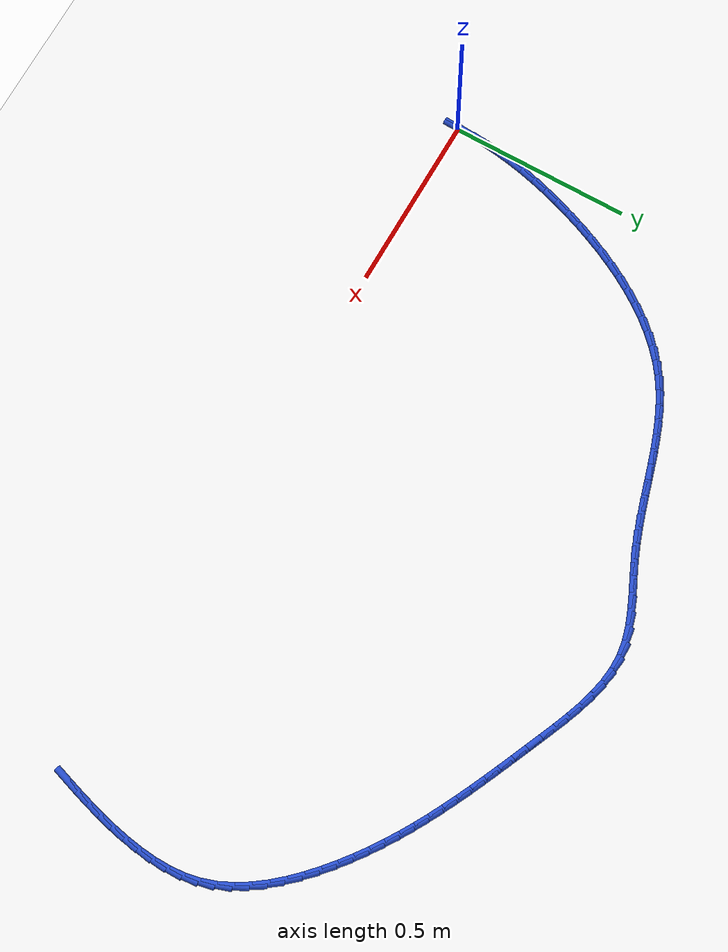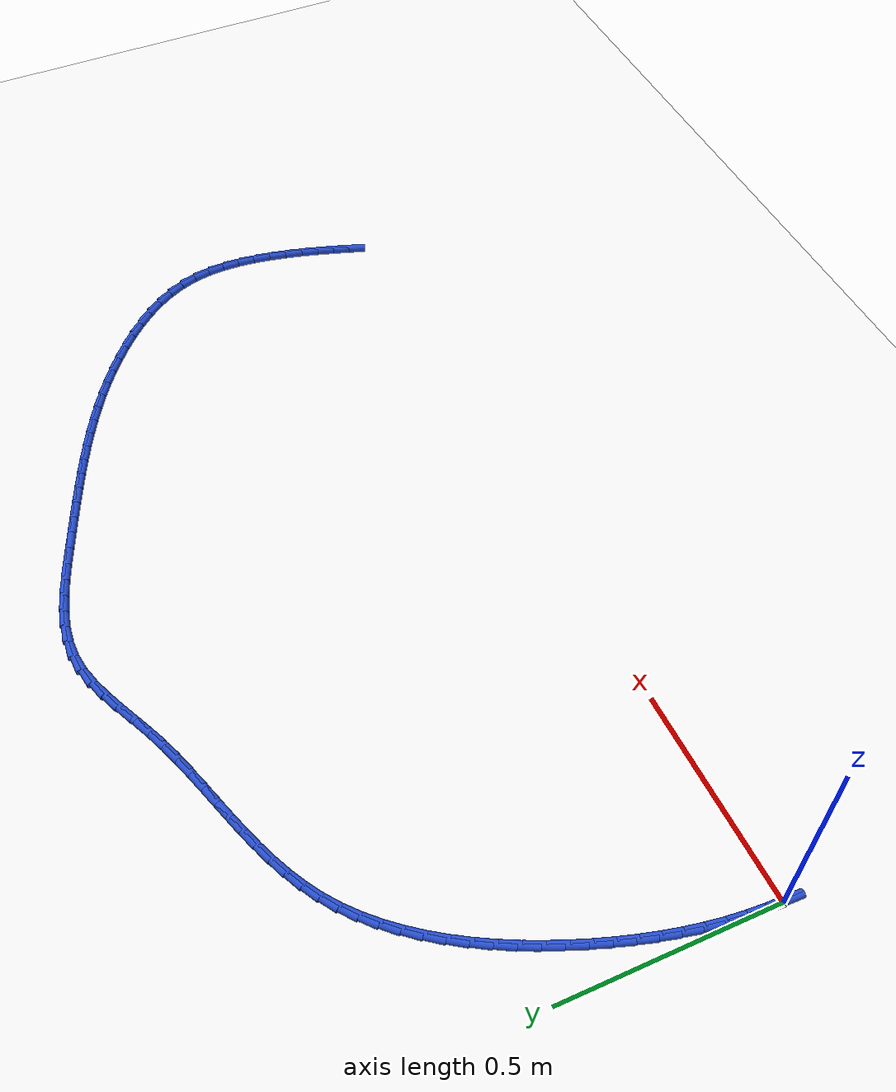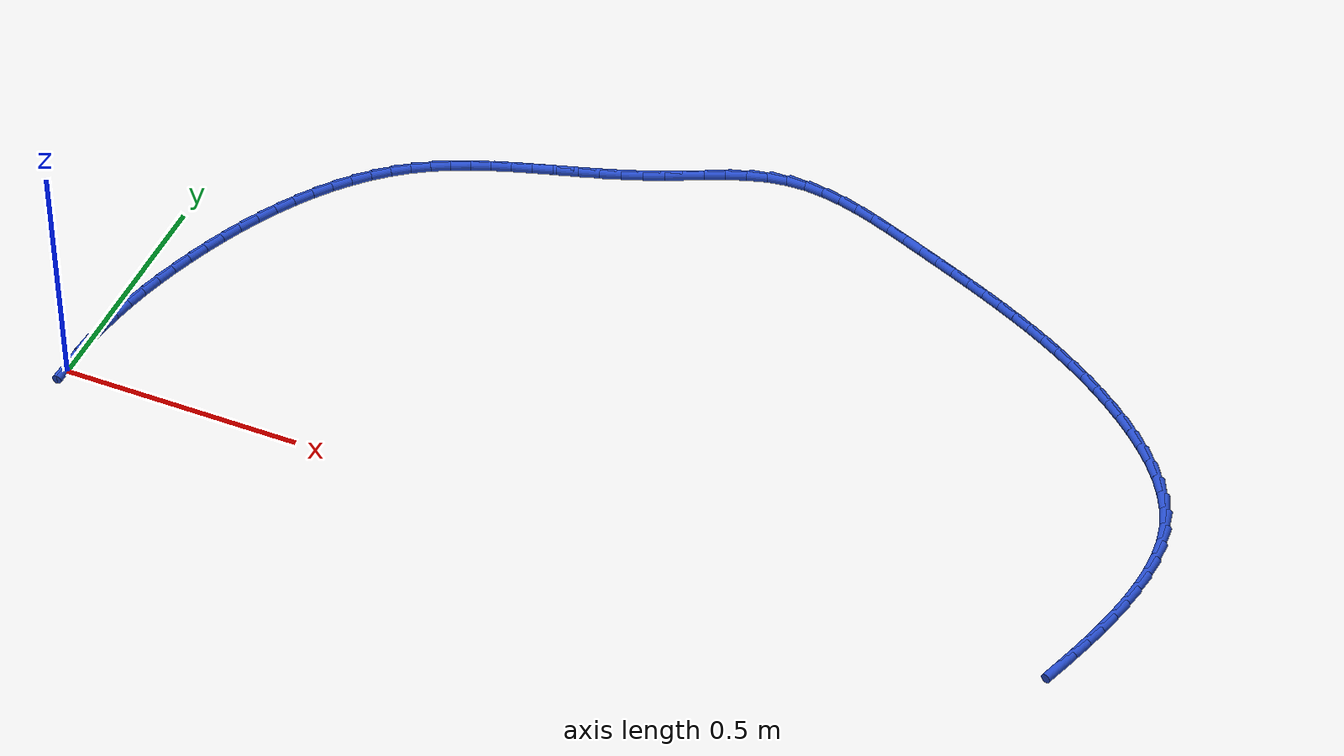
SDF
<sdf version="1.6">
 <world name="default">
  <model name="ground_plane">
   <static>1</static>
   <link name="link">
    <collision name="collision">
     <geometry><plane><normal>0 0 1</normal><size>100 100</size></plane></geometry>
     <surface><friction><ode><mu>100</mu><mu2>50</mu2></ode></friction></surface>
    </collision>
    <visual name="visual">
     <cast_shadows>0</cast_shadows>
     <geometry><plane><normal>0 0 1</normal><size>100 100</size></plane></geometry>
     <material>
      <script><uri>file://media/materials/scripts/gazebo.material</uri><name>Gazebo/WhiteGlow</name></script>
     </material>
    </visual>
   </link>
  </model>
  <model name="line">
   <link name="link_0">
    <pose>8.673617379884035e-18 1.3877787807814457e-17 0.01 0 1.57 1.537599450367711</pose>
    <collision name="collision">
     <geometry><cylinder><radius>0.01</radius><length>0.08</length></cylinder></geometry>
    </collision>
    <visual name="visual">
     <material>
      <script><name>Gazebo/Blue</name><uri>file://media/materials/scripts/gazebo.material</uri></script>
     </material>
     <geometry><cylinder><radius>0.01</radius><length>0.08</length></cylinder></geometry>
    </visual>
   </link>
   <link name="link_1">
    <pose>0.0014228718258987249 0.04284587156562112 0.01 0 1.57 1.4931271198834803</pose>
    <collision name="collision">
     <geometry><cylinder><radius>0.01</radius><length>0.08</length></cylinder></geometry>
    </collision>
    <visual name="visual">
     <material>
      <script><name>Gazebo/Blue</name><uri>file://media/materials/scripts/gazebo.material</uri></script>
     </material>
     <geometry><cylinder><radius>0.01</radius><length>0.08</length></cylinder></geometry>
    </visual>
   </link>
   <link name="link_2">
    <pose>0.004742405994035064 0.08549928052376658 0.01 0 1.57 1.4502465807518221</pose>
    <collision name="collision">
     <geometry><cylinder><radius>0.01</radius><length>0.08</length></cylinder></geometry>
    </collision>
    <visual name="visual">
     <material>
      <script><name>Gazebo/Blue</name><uri>file://media/materials/scripts/gazebo.material</uri></script>
     </material>
     <geometry><cylinder><radius>0.01</radius><length>0.08</length></cylinder></geometry>
    </visual>
   </link>
   <link name="link_3">
    <pose>0.009887973836087992 0.12797650079125714 0.01 0 1.57 1.4091424649536322</pose>
    <collision name="collision">
     <geometry><cylinder><radius>0.01</radius><length>0.08</length></cylinder></geometry>
    </collision>
    <visual name="visual">
     <material>
      <script><name>Gazebo/Blue</name><uri>file://media/materials/scripts/gazebo.material</uri></script>
     </material>
     <geometry><cylinder><radius>0.01</radius><length>0.08</length></cylinder></geometry>
    </visual>
   </link>
   <link name="link_4">
    <pose>0.01678894668373644 0.17029380628491342 0.01 0 1.57 1.3699600547260784</pose>
    <collision name="collision">
     <geometry><cylinder><radius>0.01</radius><length>0.08</length></cylinder></geometry>
    </collision>
    <visual name="visual">
     <material>
      <script><name>Gazebo/Blue</name><uri>file://media/materials/scripts/gazebo.material</uri></script>
     </material>
     <geometry><cylinder><radius>0.01</radius><length>0.08</length></cylinder></geometry>
    </visual>
   </link>
   <link name="link_5">
    <pose>0.025374695868659362 0.2124674709215563 0.01 0 1.57 1.3328064204066152</pose>
    <collision name="collision">
     <geometry><cylinder><radius>0.01</radius><length>0.08</length></cylinder></geometry>
    </collision>
    <visual name="visual">
     <material>
      <script><name>Gazebo/Blue</name><uri>file://media/materials/scripts/gazebo.material</uri></script>
     </material>
     <geometry><cylinder><radius>0.01</radius><length>0.08</length></cylinder></geometry>
    </visual>
   </link>
   <link name="link_6">
    <pose>0.03557459272253571 0.2545137686180063 0.01 0 1.57 1.2977531604129349</pose>
    <collision name="collision">
     <geometry><cylinder><radius>0.01</radius><length>0.08</length></cylinder></geometry>
    </collision>
    <visual name="visual">
     <material>
      <script><name>Gazebo/Blue</name><uri>file://media/materials/scripts/gazebo.material</uri></script>
     </material>
     <geometry><cylinder><radius>0.01</radius><length>0.08</length></cylinder></geometry>
    </visual>
   </link>
   <link name="link_7">
    <pose>0.04731800857704441 0.2964489732910842 0.01 0 1.57 1.264840242945637</pose>
    <collision name="collision">
     <geometry><cylinder><radius>0.01</radius><length>0.08</length></cylinder></geometry>
    </collision>
    <visual name="visual">
     <material>
      <script><name>Gazebo/Blue</name><uri>file://media/materials/scripts/gazebo.material</uri></script>
     </material>
     <geometry><cylinder><radius>0.01</radius><length>0.08</length></cylinder></geometry>
    </visual>
   </link>
   <link name="link_8">
    <pose>0.06053431476386442 0.3382893588576108 0.01 0 1.57 1.234080470994198</pose>
    <collision name="collision">
     <geometry><cylinder><radius>0.01</radius><length>0.08</length></cylinder></geometry>
    </collision>
    <visual name="visual">
     <material>
      <script><name>Gazebo/Blue</name><uri>file://media/materials/scripts/gazebo.material</uri></script>
     </material>
     <geometry><cylinder><radius>0.01</radius><length>0.08</length></cylinder></geometry>
    </visual>
   </link>
   <link name="link_9">
    <pose>0.0751528826146747 0.3800511992344068 0.01 0 1.57 1.204846771785379</pose>
    <collision name="collision">
     <geometry><cylinder><radius>0.01</radius><length>0.08</length></cylinder></geometry>
    </collision>
    <visual name="visual">
     <material>
      <script><name>Gazebo/Blue</name><uri>file://media/materials/scripts/gazebo.material</uri></script>
     </material>
     <geometry><cylinder><radius>0.01</radius><length>0.08</length></cylinder></geometry>
    </visual>
   </link>
   <link name="link_10">
    <pose>0.09111874508139664 0.4217146082256782 0.01 0 1.57 1.1740229874519834</pose>
    <collision name="collision">
     <geometry><cylinder><radius>0.01</radius><length>0.08</length></cylinder></geometry>
    </collision>
    <visual name="visual">
     <material>
      <script><name>Gazebo/Blue</name><uri>file://media/materials/scripts/gazebo.material</uri></script>
     </material>
     <geometry><cylinder><radius>0.01</radius><length>0.08</length></cylinder></geometry>
    </visual>
   </link>
   <link name="link_11">
    <pose>0.10845266657797514 0.46308484810987344 0.01 0 1.57 1.1403853496866554</pose>
    <collision name="collision">
     <geometry><cylinder><radius>0.01</radius><length>0.08</length></cylinder></geometry>
    </collision>
    <visual name="visual">
     <material>
      <script><name>Gazebo/Blue</name><uri>file://media/materials/scripts/gazebo.material</uri></script>
     </material>
     <geometry><cylinder><radius>0.01</radius><length>0.08</length></cylinder></geometry>
    </visual>
   </link>
   <link name="link_12">
    <pose>0.12719827137774514 0.5039144014991548 0.01 0 1.57 1.1035539693658794</pose>
    <collision name="collision">
     <geometry><cylinder><radius>0.01</radius><length>0.08</length></cylinder></geometry>
    </collision>
    <visual name="visual">
     <material>
      <script><name>Gazebo/Blue</name><uri>file://media/materials/scripts/gazebo.material</uri></script>
     </material>
     <geometry><cylinder><radius>0.01</radius><length>0.08</length></cylinder></geometry>
    </visual>
   </link>
   <link name="link_13">
    <pose>0.14739918853467981 0.5439557399679742 0.01 0 1.57 1.0631086554477034</pose>
    <collision name="collision">
     <geometry><cylinder><radius>0.01</radius><length>0.08</length></cylinder></geometry>
    </collision>
    <visual name="visual">
     <material>
      <script><name>Gazebo/Blue</name><uri>file://media/materials/scripts/gazebo.material</uri></script>
     </material>
     <geometry><cylinder><radius>0.01</radius><length>0.08</length></cylinder></geometry>
    </visual>
   </link>
   <link name="link_14">
    <pose>0.16909904710275245 0.5829613350907845 0.01 0 1.57 1.018589851970601</pose>
    <collision name="collision">
     <geometry><cylinder><radius>0.01</radius><length>0.08</length></cylinder></geometry>
    </collision>
    <visual name="visual">
     <material>
      <script><name>Gazebo/Blue</name><uri>file://media/materials/scripts/gazebo.material</uri></script>
     </material>
     <geometry><cylinder><radius>0.01</radius><length>0.08</length></cylinder></geometry>
    </visual>
   </link>
   <link name="link_15">
    <pose>0.19234147613593622 0.6206836584420379 0.01 0 1.57 0.9695048950105307</pose>
    <collision name="collision">
     <geometry><cylinder><radius>0.01</radius><length>0.08</length></cylinder></geometry>
    </collision>
    <visual name="visual">
     <material>
      <script><name>Gazebo/Blue</name><uri>file://media/materials/scripts/gazebo.material</uri></script>
     </material>
     <geometry><cylinder><radius>0.01</radius><length>0.08</length></cylinder></geometry>
    </visual>
   </link>
   <link name="link_16">
    <pose>0.21717010468820444 0.6568751815961871 0.01 0 1.57 0.9153422922503045</pose>
    <collision name="collision">
     <geometry><cylinder><radius>0.01</radius><length>0.08</length></cylinder></geometry>
    </collision>
    <visual name="visual">
     <material>
      <script><name>Gazebo/Blue</name><uri>file://media/materials/scripts/gazebo.material</uri></script>
     </material>
     <geometry><cylinder><radius>0.01</radius><length>0.08</length></cylinder></geometry>
    </visual>
   </link>
   <link name="link_17">
    <pose>0.2436285618135302 0.691288376127684 0.01 0 1.57 0.8555978114216262</pose>
    <collision name="collision">
     <geometry><cylinder><radius>0.01</radius><length>0.08</length></cylinder></geometry>
    </collision>
    <visual name="visual">
     <material>
      <script><name>Gazebo/Blue</name><uri>file://media/materials/scripts/gazebo.material</uri></script>
     </material>
     <geometry><cylinder><radius>0.01</radius><length>0.08</length></cylinder></geometry>
    </visual>
   </link>
   <link name="link_18">
    <pose>0.2717604765658868 0.7236757136109813 0.01 0 1.57 0.7898167057926905</pose>
    <collision name="collision">
     <geometry><cylinder><radius>0.01</radius><length>0.08</length></cylinder></geometry>
    </collision>
    <visual name="visual">
     <material>
      <script><name>Gazebo/Blue</name><uri>file://media/materials/scripts/gazebo.material</uri></script>
     </material>
     <geometry><cylinder><radius>0.01</radius><length>0.08</length></cylinder></geometry>
    </visual>
   </link>
   <link name="link_19">
    <pose>0.3016094779992475 0.7537896656205313 0.01 0 1.57 0.7176558269763292</pose>
    <collision name="collision">
     <geometry><cylinder><radius>0.01</radius><length>0.08</length></cylinder></geometry>
    </collision>
    <visual name="visual">
     <material>
      <script><name>Gazebo/Blue</name><uri>file://media/materials/scripts/gazebo.material</uri></script>
     </material>
     <geometry><cylinder><radius>0.01</radius><length>0.08</length></cylinder></geometry>
    </visual>
   </link>
   <link name="link_20">
    <pose>0.33321919516758536 0.7813827037307866 0.01 0 1.57 0.6389675547448508</pose>
    <collision name="collision">
     <geometry><cylinder><radius>0.01</radius><length>0.08</length></cylinder></geometry>
    </collision>
    <visual name="visual">
     <material>
      <script><name>Gazebo/Blue</name><uri>file://media/materials/scripts/gazebo.material</uri></script>
     </material>
     <geometry><cylinder><radius>0.01</radius><length>0.08</length></cylinder></geometry>
    </visual>
   </link>
   <link name="link_21">
    <pose>0.3666332401087448 0.8062073435570297 0.01 0 1.57 0.5573835775006121</pose>
    <collision name="collision">
     <geometry><cylinder><radius>0.01</radius><length>0.08</length></cylinder></geometry>
    </collision>
    <visual name="visual">
     <material>
      <script><name>Gazebo/Blue</name><uri>file://media/materials/scripts/gazebo.material</uri></script>
     </material>
     <geometry><cylinder><radius>0.01</radius><length>0.08</length></cylinder></geometry>
    </visual>
   </link>
   <link name="link_22">
    <pose>0.4018421612449245 0.8281534389833063 0.01 0 1.57 0.48485346961716697</pose>
    <collision name="collision">
     <geometry><cylinder><radius>0.01</radius><length>0.08</length></cylinder></geometry>
    </collision>
    <visual name="visual">
     <material>
      <script><name>Gazebo/Blue</name><uri>file://media/materials/scripts/gazebo.material</uri></script>
     </material>
     <geometry><cylinder><radius>0.01</radius><length>0.08</length></cylinder></geometry>
    </visual>
   </link>
   <link name="link_23">
    <pose>0.43866602477117095 0.8475520828414268 0.01 0 1.57 0.4243671857226578</pose>
    <collision name="collision">
     <geometry><cylinder><radius>0.01</radius><length>0.08</length></cylinder></geometry>
    </collision>
    <visual name="visual">
     <material>
      <script><name>Gazebo/Blue</name><uri>file://media/materials/scripts/gazebo.material</uri></script>
     </material>
     <geometry><cylinder><radius>0.01</radius><length>0.08</length></cylinder></geometry>
    </visual>
   </link>
   <link name="link_24">
    <pose>0.47689072773646457 0.8648228039151946 0.01 0 1.57 0.3760746621710777</pose>
    <collision name="collision">
     <geometry><cylinder><radius>0.01</radius><length>0.08</length></cylinder></geometry>
    </collision>
    <visual name="visual">
     <material>
      <script><name>Gazebo/Blue</name><uri>file://media/materials/scripts/gazebo.material</uri></script>
     </material>
     <geometry><cylinder><radius>0.01</radius><length>0.08</length></cylinder></geometry>
    </visual>
   </link>
   <link name="link_25">
    <pose>0.5163021671897856 0.8803851309884123 0.01 0 1.57 0.33973864782732827</pose>
    <collision name="collision">
     <geometry><cylinder><radius>0.01</radius><length>0.08</length></cylinder></geometry>
    </collision>
    <visual name="visual">
     <material>
      <script><name>Gazebo/Blue</name><uri>file://media/materials/scripts/gazebo.material</uri></script>
     </material>
     <geometry><cylinder><radius>0.01</radius><length>0.08</length></cylinder></geometry>
    </visual>
   </link>
   <link name="link_26">
    <pose>0.5566862401801154 0.8946585928448834 0.01 0 1.57 0.31495233899846786</pose>
    <collision name="collision">
     <geometry><cylinder><radius>0.01</radius><length>0.08</length></cylinder></geometry>
    </collision>
    <visual name="visual">
     <material>
      <script><name>Gazebo/Blue</name><uri>file://media/materials/scripts/gazebo.material</uri></script>
     </material>
     <geometry><cylinder><radius>0.01</radius><length>0.08</length></cylinder></geometry>
    </visual>
   </link>
   <link name="link_27">
    <pose>0.5978288437564337 0.9080627182684106 0.01 0 1.57 0.3012913620824555</pose>
    <collision name="collision">
     <geometry><cylinder><radius>0.01</radius><length>0.08</length></cylinder></geometry>
    </collision>
    <visual name="visual">
     <material>
      <script><name>Gazebo/Blue</name><uri>file://media/materials/scripts/gazebo.material</uri></script>
     </material>
     <geometry><cylinder><radius>0.01</radius><length>0.08</length></cylinder></geometry>
    </visual>
   </link>
   <link name="link_28">
    <pose>0.6395158749677219 0.9210170360427972 0.01 0 1.57 0.29840373892915856</pose>
    <collision name="collision">
     <geometry><cylinder><radius>0.01</radius><length>0.08</length></cylinder></geometry>
    </collision>
    <visual name="visual">
     <material>
      <script><name>Gazebo/Blue</name><uri>file://media/materials/scripts/gazebo.material</uri></script>
     </material>
     <geometry><cylinder><radius>0.01</radius><length>0.08</length></cylinder></geometry>
    </visual>
   </link>
   <link name="link_29">
    <pose>0.6815332308629598 0.933941074951846 0.01 0 1.57 0.3060504058377907</pose>
    <collision name="collision">
     <geometry><cylinder><radius>0.01</radius><length>0.08</length></cylinder></geometry>
    </collision>
    <visual name="visual">
     <material>
      <script><name>Gazebo/Blue</name><uri>file://media/materials/scripts/gazebo.material</uri></script>
     </material>
     <geometry><cylinder><radius>0.01</radius><length>0.08</length></cylinder></geometry>
    </visual>
   </link>
   <link name="link_30">
    <pose>0.7236668084911281 0.9472543637793599 0.01 0 1.57 0.3241074506008348</pose>
    <collision name="collision">
     <geometry><cylinder><radius>0.01</radius><length>0.08</length></cylinder></geometry>
    </collision>
    <visual name="visual">
     <material>
      <script><name>Gazebo/Blue</name><uri>file://media/materials/scripts/gazebo.material</uri></script>
     </material>
     <geometry><cylinder><radius>0.01</radius><length>0.08</length></cylinder></geometry>
    </visual>
   </link>
   <link name="link_31">
    <pose>0.7657025049012077 0.9613764313091424 0.01 0 1.57 0.35253620106476874</pose>
    <collision name="collision">
     <geometry><cylinder><radius>0.01</radius><length>0.08</length></cylinder></geometry>
    </collision>
    <visual name="visual">
     <material>
      <script><name>Gazebo/Blue</name><uri>file://media/materials/scripts/gazebo.material</uri></script>
     </material>
     <geometry><cylinder><radius>0.01</radius><length>0.08</length></cylinder></geometry>
    </visual>
   </link>
   <link name="link_32">
    <pose>0.807426217142179 0.9767268063249963 0.01 0 1.57 0.3912274073067997</pose>
    <collision name="collision">
     <geometry><cylinder><radius>0.01</radius><length>0.08</length></cylinder></geometry>
    </collision>
    <visual name="visual">
     <material>
      <script><name>Gazebo/Blue</name><uri>file://media/materials/scripts/gazebo.material</uri></script>
     </material>
     <geometry><cylinder><radius>0.01</radius><length>0.08</length></cylinder></geometry>
    </visual>
   </link>
   <link name="link_33">
    <pose>0.84862485487194 0.9937208504358417 0.01 0 1.57 0.42770603930208484</pose>
    <collision name="collision">
     <geometry><cylinder><radius>0.01</radius><length>0.08</length></cylinder></geometry>
    </collision>
    <visual name="visual">
     <material>
      <script><name>Gazebo/Blue</name><uri>file://media/materials/scripts/gazebo.material</uri></script>
     </material>
     <geometry><cylinder><radius>0.01</radius><length>0.08</length></cylinder></geometry>
    </visual>
   </link>
   <link name="link_34">
    <pose>0.8892186142266436 1.0122254133276047 0.01 0 1.57 0.43752843359220994</pose>
    <collision name="collision">
     <geometry><cylinder><radius>0.01</radius><length>0.08</length></cylinder></geometry>
    </collision>
    <visual name="visual">
     <material>
      <script><name>Gazebo/Blue</name><uri>file://media/materials/scripts/gazebo.material</uri></script>
     </material>
     <geometry><cylinder><radius>0.01</radius><length>0.08</length></cylinder></geometry>
    </visual>
   </link>
   <link name="link_35">
    <pose>0.9293925530836605 1.0310173629798542 0.01 0 1.57 0.41744703278493184</pose>
    <collision name="collision">
     <geometry><cylinder><radius>0.01</radius><length>0.08</length></cylinder></geometry>
    </collision>
    <visual name="visual">
     <material>
      <script><name>Gazebo/Blue</name><uri>file://media/materials/scripts/gazebo.material</uri></script>
     </material>
     <geometry><cylinder><radius>0.01</radius><length>0.08</length></cylinder></geometry>
    </visual>
   </link>
   <link name="link_36">
    <pose>0.9693630146237355 1.0487448194140832 0.01 0 1.57 0.36571064796944036</pose>
    <collision name="collision">
     <geometry><cylinder><radius>0.01</radius><length>0.08</length></cylinder></geometry>
    </collision>
    <visual name="visual">
     <material>
      <script><name>Gazebo/Blue</name><uri>file://media/materials/scripts/gazebo.material</uri></script>
     </material>
     <geometry><cylinder><radius>0.01</radius><length>0.08</length></cylinder></geometry>
    </visual>
   </link>
   <link name="link_37">
    <pose>1.0093463420276125 1.0640559026517835 0.01 0 1.57 0.2795300269030682</pose>
    <collision name="collision">
     <geometry><cylinder><radius>0.01</radius><length>0.08</length></cylinder></geometry>
    </collision>
    <visual name="visual">
     <material>
      <script><name>Gazebo/Blue</name><uri>file://media/materials/scripts/gazebo.material</uri></script>
     </material>
     <geometry><cylinder><radius>0.01</radius><length>0.08</length></cylinder></geometry>
    </visual>
   </link>
   <link name="link_38">
    <pose>1.0495588784760357 1.075598732714448 0.01 0 1.57 0.1567691778716241</pose>
    <collision name="collision">
     <geometry><cylinder><radius>0.01</radius><length>0.08</length></cylinder></geometry>
    </collision>
    <visual name="visual">
     <material>
      <script><name>Gazebo/Blue</name><uri>file://media/materials/scripts/gazebo.material</uri></script>
     </material>
     <geometry><cylinder><radius>0.01</radius><length>0.08</length></cylinder></geometry>
    </visual>
   </link>
   <link name="link_39">
    <pose>1.0902163374289144 1.0820253032894367 0.01 0 1.57 0.01487435224394456</pose>
    <collision name="collision">
     <geometry><cylinder><radius>0.01</radius><length>0.08</length></cylinder></geometry>
    </collision>
    <visual name="visual">
     <material>
      <script><name>Gazebo/Blue</name><uri>file://media/materials/scripts/gazebo.material</uri></script>
     </material>
     <geometry><cylinder><radius>0.01</radius><length>0.08</length></cylinder></geometry>
    </visual>
   </link>
   <link name="link_40">
    <pose>1.1314286439705985 1.0826383548661989 0.01 0 1.57 -0.10813326937899687</pose>
    <collision name="collision">
     <geometry><cylinder><radius>0.01</radius><length>0.08</length></cylinder></geometry>
    </collision>
    <visual name="visual">
     <material>
      <script><name>Gazebo/Blue</name><uri>file://media/materials/scripts/gazebo.material</uri></script>
     </material>
     <geometry><cylinder><radius>0.01</radius><length>0.08</length></cylinder></geometry>
    </visual>
   </link>
   <link name="link_41">
    <pose>1.173082038984183 1.0781165993287316 0.01 0 1.57 -0.206830549898252</pose>
    <collision name="collision">
     <geometry><cylinder><radius>0.01</radius><length>0.08</length></cylinder></geometry>
    </collision>
    <visual name="visual">
     <material>
      <script><name>Gazebo/Blue</name><uri>file://media/materials/scripts/gazebo.material</uri></script>
     </material>
     <geometry><cylinder><radius>0.01</radius><length>0.08</length></cylinder></geometry>
    </visual>
   </link>
   <link name="link_42">
    <pose>1.2150343224524427 1.0693136999659842 0.01 0 1.57 -0.28266871808706434</pose>
    <collision name="collision">
     <geometry><cylinder><radius>0.01</radius><length>0.08</length></cylinder></geometry>
    </collision>
    <visual name="visual">
     <material>
      <script><name>Gazebo/Blue</name><uri>file://media/materials/scripts/gazebo.material</uri></script>
     </material>
     <geometry><cylinder><radius>0.01</radius><length>0.08</length></cylinder></geometry>
    </visual>
   </link>
   <link name="link_43">
    <pose>1.257143294358152 1.0570833200669048 0.01 0 1.57 -0.3379640296120597</pose>
    <collision name="collision">
     <geometry><cylinder><radius>0.01</radius><length>0.08</length></cylinder></geometry>
    </collision>
    <visual name="visual">
     <material>
      <script><name>Gazebo/Blue</name><uri>file://media/materials/scripts/gazebo.material</uri></script>
     </material>
     <geometry><cylinder><radius>0.01</radius><length>0.08</length></cylinder></geometry>
    </visual>
   </link>
   <link name="link_44">
    <pose>1.2992667546840877 1.0422791229204424 0.01 0 1.57 -0.37487027529283395</pose>
    <collision name="collision">
     <geometry><cylinder><radius>0.01</radius><length>0.08</length></cylinder></geometry>
    </collision>
    <visual name="visual">
     <material>
      <script><name>Gazebo/Blue</name><uri>file://media/materials/scripts/gazebo.material</uri></script>
     </material>
     <geometry><cylinder><radius>0.01</radius><length>0.08</length></cylinder></geometry>
    </visual>
   </link>
   <link name="link_45">
    <pose>1.3412625034130226 1.0257547718155455 0.01 0 1.57 -0.3948947770489714</pose>
    <collision name="collision">
     <geometry><cylinder><radius>0.01</radius><length>0.08</length></cylinder></geometry>
    </collision>
    <visual name="visual">
     <material>
      <script><name>Gazebo/Blue</name><uri>file://media/materials/scripts/gazebo.material</uri></script>
     </material>
     <geometry><cylinder><radius>0.01</radius><length>0.08</length></cylinder></geometry>
    </visual>
   </link>
   <link name="link_46">
    <pose>1.3829883405277337 1.0083639300411626 0.01 0 1.57 -0.3998123739078284</pose>
    <collision name="collision">
     <geometry><cylinder><radius>0.01</radius><length>0.08</length></cylinder></geometry>
    </collision>
    <visual name="visual">
     <material>
      <script><name>Gazebo/Blue</name><uri>file://media/materials/scripts/gazebo.material</uri></script>
     </material>
     <geometry><cylinder><radius>0.01</radius><length>0.08</length></cylinder></geometry>
    </visual>
   </link>
   <link name="link_47">
    <pose>1.424309677556677 0.9909026870659385 0.01 0 1.57 -0.40101207421590196</pose>
    <collision name="collision">
     <geometry><cylinder><radius>0.01</radius><length>0.08</length></cylinder></geometry>
    </collision>
    <visual name="visual">
     <material>
      <script><name>Gazebo/Blue</name><uri>file://media/materials/scripts/gazebo.material</uri></script>
     </material>
     <geometry><cylinder><radius>0.01</radius><length>0.08</length></cylinder></geometry>
    </visual>
   </link>
   <link name="link_48">
    <pose>1.4651697376489927 0.9735785643522845 0.01 0 1.57 -0.40520815230029555</pose>
    <collision name="collision">
     <geometry><cylinder><radius>0.01</radius><length>0.08</length></cylinder></geometry>
    </collision>
    <visual name="visual">
     <material>
      <script><name>Gazebo/Blue</name><uri>file://media/materials/scripts/gazebo.material</uri></script>
     </material>
     <geometry><cylinder><radius>0.01</radius><length>0.08</length></cylinder></geometry>
    </visual>
   </link>
   <link name="link_49">
    <pose>1.5055573019600175 0.9562544820724649 0.01 0 1.57 -0.41256374679476904</pose>
    <collision name="collision">
     <geometry><cylinder><radius>0.01</radius><length>0.08</length></cylinder></geometry>
    </collision>
    <visual name="visual">
     <material>
      <script><name>Gazebo/Blue</name><uri>file://media/materials/scripts/gazebo.material</uri></script>
     </material>
     <geometry><cylinder><radius>0.01</radius><length>0.08</length></cylinder></geometry>
    </visual>
   </link>
   <link name="link_50">
    <pose>1.545461727178648 0.938789007056181 0.01 0 1.57 -0.42313899793170695</pose>
    <collision name="collision">
     <geometry><cylinder><radius>0.01</radius><length>0.08</length></cylinder></geometry>
    </collision>
    <visual name="visual">
     <material>
      <script><name>Gazebo/Blue</name><uri>file://media/materials/scripts/gazebo.material</uri></script>
     </material>
     <geometry><cylinder><radius>0.01</radius><length>0.08</length></cylinder></geometry>
    </visual>
   </link>
   <link name="link_51">
    <pose>1.5848723699937823 0.9210407061331355 0.01 0 1.57 -0.4369716728732286</pose>
    <collision name="collision">
     <geometry><cylinder><radius>0.01</radius><length>0.08</length></cylinder></geometry>
    </collision>
    <visual name="visual">
     <material>
      <script><name>Gazebo/Blue</name><uri>file://media/materials/scripts/gazebo.material</uri></script>
     </material>
     <geometry><cylinder><radius>0.01</radius><length>0.08</length></cylinder></geometry>
    </visual>
   </link>
   <link name="link_52">
    <pose>1.623778587094316 0.9028681461330307 0.01 0 1.57 -0.45407254224297905</pose>
    <collision name="collision">
     <geometry><cylinder><radius>0.01</radius><length>0.08</length></cylinder></geometry>
    </collision>
    <visual name="visual">
     <material>
      <script><name>Gazebo/Blue</name><uri>file://media/materials/scripts/gazebo.material</uri></script>
     </material>
     <geometry><cylinder><radius>0.01</radius><length>0.08</length></cylinder></geometry>
    </visual>
   </link>
   <link name="link_53">
    <pose>1.6621697351691465 0.8841298938855683 0.01 0 1.57 -0.4744200437202296</pose>
    <collision name="collision">
     <geometry><cylinder><radius>0.01</radius><length>0.08</length></cylinder></geometry>
    </collision>
    <visual name="visual">
     <material>
      <script><name>Gazebo/Blue</name><uri>file://media/materials/scripts/gazebo.material</uri></script>
     </material>
     <geometry><cylinder><radius>0.01</radius><length>0.08</length></cylinder></geometry>
    </visual>
   </link>
   <link name="link_54">
    <pose>1.7000351709071706 0.8646845162204513 0.01 0 1.57 -0.49795452736878637</pose>
    <collision name="collision">
     <geometry><cylinder><radius>0.01</radius><length>0.08</length></cylinder></geometry>
    </collision>
    <visual name="visual">
     <material>
      <script><name>Gazebo/Blue</name><uri>file://media/materials/scripts/gazebo.material</uri></script>
     </material>
     <geometry><cylinder><radius>0.01</radius><length>0.08</length></cylinder></geometry>
    </visual>
   </link>
   <link name="link_55">
    <pose>1.7373642509972864 0.844390579967382 0.01 0 1.57 -0.5245725518492229</pose>
    <collision name="collision">
     <geometry><cylinder><radius>0.01</radius><length>0.08</length></cylinder></geometry>
    </collision>
    <visual name="visual">
     <material>
      <script><name>Gazebo/Blue</name><uri>file://media/materials/scripts/gazebo.material</uri></script>
     </material>
     <geometry><cylinder><radius>0.01</radius><length>0.08</length></cylinder></geometry>
    </visual>
   </link>
   <link name="link_56">
    <pose>1.7741463321283897 0.823106651956062 0.01 0 1.57 -0.5541218759405149</pose>
    <collision name="collision">
     <geometry><cylinder><radius>0.01</radius><length>0.08</length></cylinder></geometry>
    </collision>
    <visual name="visual">
     <material>
      <script><name>Gazebo/Blue</name><uri>file://media/materials/scripts/gazebo.material</uri></script>
     </material>
     <geometry><cylinder><radius>0.01</radius><length>0.08</length></cylinder></geometry>
    </visual>
   </link>
   <link name="link_57">
    <pose>1.8103707709893775 0.8006912990161942 0.01 0 1.57 -0.5863979294713135</pose>
    <collision name="collision">
     <geometry><cylinder><radius>0.01</radius><length>0.08</length></cylinder></geometry>
    </collision>
    <visual name="visual">
     <material>
      <script><name>Gazebo/Blue</name><uri>file://media/materials/scripts/gazebo.material</uri></script>
     </material>
     <geometry><cylinder><radius>0.01</radius><length>0.08</length></cylinder></geometry>
    </visual>
   </link>
   <link name="link_58">
    <pose>1.8460269242691476 0.7770030879774804 0.01 0 1.57 -0.621142603829005</pose>
    <collision name="collision">
     <geometry><cylinder><radius>0.01</radius><length>0.08</length></cylinder></geometry>
    </collision>
    <visual name="visual">
     <material>
      <script><name>Gazebo/Blue</name><uri>file://media/materials/scripts/gazebo.material</uri></script>
     </material>
     <geometry><cylinder><radius>0.01</radius><length>0.08</length></cylinder></geometry>
    </visual>
   </link>
   <link name="link_59">
    <pose>1.8811041486565965 0.7519005856696236 0.01 0 1.57 -0.6580461251453021</pose>
    <collision name="collision">
     <geometry><cylinder><radius>0.01</radius><length>0.08</length></cylinder></geometry>
    </collision>
    <visual name="visual">
     <material>
      <script><name>Gazebo/Blue</name><uri>file://media/materials/scripts/gazebo.material</uri></script>
     </material>
     <geometry><cylinder><radius>0.01</radius><length>0.08</length></cylinder></geometry>
    </visual>
   </link>
   <link name="link_60">
    <pose>1.915591800840621 0.7252423589223252 0.01 0 1.57 -0.6968840890273211</pose>
    <collision name="collision">
     <geometry><cylinder><radius>0.01</radius><length>0.08</length></cylinder></geometry>
    </collision>
    <visual name="visual">
     <material>
      <script><name>Gazebo/Blue</name><uri>file://media/materials/scripts/gazebo.material</uri></script>
     </material>
     <geometry><cylinder><radius>0.01</radius><length>0.08</length></cylinder></geometry>
    </visual>
   </link>
   <link name="link_61">
    <pose>1.9494662979429587 0.6968902241717155 0.01 0 1.57 -0.7406611730187971</pose>
    <collision name="collision">
     <geometry><cylinder><radius>0.01</radius><length>0.08</length></cylinder></geometry>
    </collision>
    <visual name="visual">
     <material>
      <script><name>Gazebo/Blue</name><uri>file://media/materials/scripts/gazebo.material</uri></script>
     </material>
     <geometry><cylinder><radius>0.01</radius><length>0.08</length></cylinder></geometry>
    </visual>
   </link>
   <link name="link_62">
    <pose>1.9823947135604896 0.6667836855148987 0.01 0 1.57 -0.7934497828985574</pose>
    <collision name="collision">
     <geometry><cylinder><radius>0.01</radius><length>0.08</length></cylinder></geometry>
    </collision>
    <visual name="visual">
     <material>
      <script><name>Gazebo/Blue</name><uri>file://media/materials/scripts/gazebo.material</uri></script>
     </material>
     <geometry><cylinder><radius>0.01</radius><length>0.08</length></cylinder></geometry>
    </visual>
   </link>
   <link name="link_63">
    <pose>2.013728115245792 0.6349416079163096 0.01 0 1.57 -0.856807101548687</pose>
    <collision name="collision">
     <geometry><cylinder><radius>0.01</radius><length>0.08</length></cylinder></geometry>
    </collision>
    <visual name="visual">
     <material>
      <script><name>Gazebo/Blue</name><uri>file://media/materials/scripts/gazebo.material</uri></script>
     </material>
     <geometry><cylinder><radius>0.01</radius><length>0.08</length></cylinder></geometry>
    </visual>
   </link>
   <link name="link_64">
    <pose>2.042803298290719 0.601386440635717 0.01 0 1.57 -0.9324098346143711</pose>
    <collision name="collision">
     <geometry><cylinder><radius>0.01</radius><length>0.08</length></cylinder></geometry>
    </collision>
    <visual name="visual">
     <material>
      <script><name>Gazebo/Blue</name><uri>file://media/materials/scripts/gazebo.material</uri></script>
     </material>
     <geometry><cylinder><radius>0.01</radius><length>0.08</length></cylinder></geometry>
    </visual>
   </link>
   <link name="link_65">
    <pose>2.068957057987124 0.5661406329328889 0.01 0 1.57 -1.0220383351015123</pose>
    <collision name="collision">
     <geometry><cylinder><radius>0.01</radius><length>0.08</length></cylinder></geometry>
    </collision>
    <visual name="visual">
     <material>
      <script><name>Gazebo/Blue</name><uri>file://media/materials/scripts/gazebo.material</uri></script>
     </material>
     <geometry><cylinder><radius>0.01</radius><length>0.08</length></cylinder></geometry>
    </visual>
   </link>
   <link name="link_66">
    <pose>2.0915261896268595 0.529226634067593 0.01 0 1.57 -1.1272332688428837</pose>
    <collision name="collision">
     <geometry><cylinder><radius>0.01</radius><length>0.08</length></cylinder></geometry>
    </collision>
    <visual name="visual">
     <material>
      <script><name>Gazebo/Blue</name><uri>file://media/materials/scripts/gazebo.material</uri></script>
     </material>
     <geometry><cylinder><radius>0.01</radius><length>0.08</length></cylinder></geometry>
    </visual>
   </link>
   <link name="link_67">
    <pose>2.109847488501779 0.49066689329959845 0.01 0 1.57 -1.2486893150940497</pose>
    <collision name="collision">
     <geometry><cylinder><radius>0.01</radius><length>0.08</length></cylinder></geometry>
    </collision>
    <visual name="visual">
     <material>
      <script><name>Gazebo/Blue</name><uri>file://media/materials/scripts/gazebo.material</uri></script>
     </material>
     <geometry><cylinder><radius>0.01</radius><length>0.08</length></cylinder></geometry>
    </visual>
   </link>
   <link name="link_68">
    <pose>2.1232577499037353 0.45048385988867284 0.01 0 1.57 -1.3804274237488203</pose>
    <collision name="collision">
     <geometry><cylinder><radius>0.01</radius><length>0.08</length></cylinder></geometry>
    </collision>
    <visual name="visual">
     <material>
      <script><name>Gazebo/Blue</name><uri>file://media/materials/scripts/gazebo.material</uri></script>
     </material>
     <geometry><cylinder><radius>0.01</radius><length>0.08</length></cylinder></geometry>
    </visual>
   </link>
   <link name="link_69">
    <pose>2.131296763287441 0.40876661677939596 0.01 0 1.57 -1.497668811316208</pose>
    <collision name="collision">
     <geometry><cylinder><radius>0.01</radius><length>0.08</length></cylinder></geometry>
    </collision>
    <visual name="visual">
     <material>
      <script><name>Gazebo/Blue</name><uri>file://media/materials/scripts/gazebo.material</uri></script>
     </material>
     <geometry><cylinder><radius>0.01</radius><length>0.08</length></cylinder></geometry>
    </visual>
   </link>
   <link name="link_70">
    <pose>2.1344363458209 0.3659101889198381 0.01 0 1.57 1.547343123283973</pose>
    <collision name="collision">
     <geometry><cylinder><radius>0.01</radius><length>0.08</length></cylinder></geometry>
    </collision>
    <visual name="visual">
     <material>
      <script><name>Gazebo/Blue</name><uri>file://media/materials/scripts/gazebo.material</uri></script>
     </material>
     <geometry><cylinder><radius>0.01</radius><length>0.08</length></cylinder></geometry>
    </visual>
   </link>
   <link name="link_71">
    <pose>2.1334156432709137 0.32239735299113603 0.01 0 1.57 1.4694695702363008</pose>
    <collision name="collision">
     <geometry><cylinder><radius>0.01</radius><length>0.08</length></cylinder></geometry>
    </collision>
    <visual name="visual">
     <material>
      <script><name>Gazebo/Blue</name><uri>file://media/materials/scripts/gazebo.material</uri></script>
     </material>
     <geometry><cylinder><radius>0.01</radius><length>0.08</length></cylinder></geometry>
    </visual>
   </link>
   <link name="link_72">
    <pose>2.128973824017783 0.278710893097403 0.01 0 1.57 1.4080213315824655</pose>
    <collision name="collision">
     <geometry><cylinder><radius>0.01</radius><length>0.08</length></cylinder></geometry>
    </collision>
    <visual name="visual">
     <material>
      <script><name>Gazebo/Blue</name><uri>file://media/materials/scripts/gazebo.material</uri></script>
     </material>
     <geometry><cylinder><radius>0.01</radius><length>0.08</length></cylinder></geometry>
    </visual>
   </link>
   <link name="link_73">
    <pose>2.121850056441805 0.2353335933427498 0.01 0 1.57 1.360372979010108</pose>
    <collision name="collision">
     <geometry><cylinder><radius>0.01</radius><length>0.08</length></cylinder></geometry>
    </collision>
    <visual name="visual">
     <material>
      <script><name>Gazebo/Blue</name><uri>file://media/materials/scripts/gazebo.material</uri></script>
     </material>
     <geometry><cylinder><radius>0.01</radius><length>0.08</length></cylinder></geometry>
    </visual>
   </link>
   <link name="link_74">
    <pose>2.11274174879832 0.1926887218184892 0.01 0 1.57 1.3212506566330535</pose>
    <collision name="collision">
     <geometry><cylinder><radius>0.01</radius><length>0.08</length></cylinder></geometry>
    </collision>
    <visual name="visual">
     <material>
      <script><name>Gazebo/Blue</name><uri>file://media/materials/scripts/gazebo.material</uri></script>
     </material>
     <geometry><cylinder><radius>0.01</radius><length>0.08</length></cylinder></geometry>
    </visual>
   </link>
   <link name="link_75">
    <pose>2.102066134160256 0.15080024441653148 0.01 0 1.57 1.2891659754196472</pose>
    <collision name="collision">
     <geometry><cylinder><radius>0.01</radius><length>0.08</length></cylinder></geometry>
    </collision>
    <visual name="visual">
     <material>
      <script><name>Gazebo/Blue</name><uri>file://media/materials/scripts/gazebo.material</uri></script>
     </material>
     <geometry><cylinder><radius>0.01</radius><length>0.08</length></cylinder></geometry>
    </visual>
   </link>
   <link name="link_76">
    <pose>2.090125201289076 0.10952788226364435 0.01 0 1.57 1.2644417821474907</pose>
    <collision name="collision">
     <geometry><cylinder><radius>0.01</radius><length>0.08</length></cylinder></geometry>
    </collision>
    <visual name="visual">
     <material>
      <script><name>Gazebo/Blue</name><uri>file://media/materials/scripts/gazebo.material</uri></script>
     </material>
     <geometry><cylinder><radius>0.01</radius><length>0.08</length></cylinder></geometry>
    </visual>
   </link>
   <link name="link_77">
    <pose>2.07722058335326 0.06873084969987486 0.01 0 1.57 1.2472857624898508</pose>
    <collision name="collision">
     <geometry><cylinder><radius>0.01</radius><length>0.08</length></cylinder></geometry>
    </collision>
    <visual name="visual">
     <material>
      <script><name>Gazebo/Blue</name><uri>file://media/materials/scripts/gazebo.material</uri></script>
     </material>
     <geometry><cylinder><radius>0.01</radius><length>0.08</length></cylinder></geometry>
    </visual>
   </link>
   <link name="link_78">
    <pose>2.0636539135212826 0.028268361065268713 0.01 0 1.57 1.2378200991088586</pose>
    <collision name="collision">
     <geometry><cylinder><radius>0.01</radius><length>0.08</length></cylinder></geometry>
    </collision>
    <visual name="visual">
     <material>
      <script><name>Gazebo/Blue</name><uri>file://media/materials/scripts/gazebo.material</uri></script>
     </material>
     <geometry><cylinder><radius>0.01</radius><length>0.08</length></cylinder></geometry>
    </visual>
   </link>
   <link name="link_160">
    <pose>-5.204170427930421e-18 2.220446049250313e-16 0.01 0 1.57 1.5372885961549843</pose>
    <collision name="collision">
     <geometry><cylinder><radius>0.01</radius><length>0.08</length></cylinder></geometry>
    </collision>
    <visual name="visual">
     <material>
      <script><name>Gazebo/Blue</name><uri>file://media/materials/scripts/gazebo.material</uri></script>
     </material>
     <geometry><cylinder><radius>0.01</radius><length>0.08</length></cylinder></geometry>
    </visual>
   </link>
   <link name="link_161">
    <pose>0.0014354334495439661 0.04282284005326971 0.01 0 1.57 1.537288596154985</pose>
    <collision name="collision">
     <geometry><cylinder><radius>0.01</radius><length>0.08</length></cylinder></geometry>
    </collision>
    <visual name="visual">
     <material>
      <script><name>Gazebo/Blue</name><uri>file://media/materials/scripts/gazebo.material</uri></script>
     </material>
     <geometry><cylinder><radius>0.01</radius><length>0.08</length></cylinder></geometry>
    </visual>
   </link>
  </model>
 </world>
</sdf>
